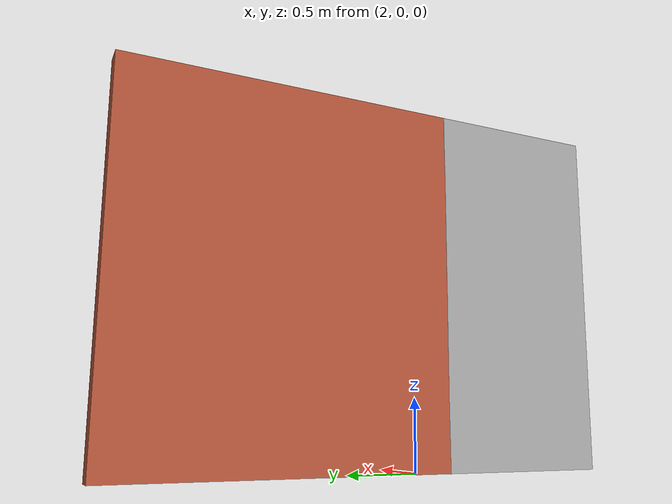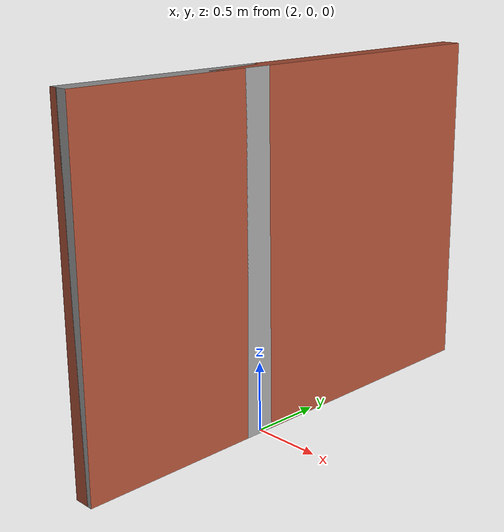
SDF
<?xml version='1.0'?>
<sdf version='1.7'>
  <model name='turtlebot3_wall'>
    <pose>1.01576 0.32413 0 0 -0 0</pose>
    <link name='Wall_4'>
      <collision name='Wall_4_Collision'>
        <geometry>
          <box>
            <size>1.5 0.15 2.5</size>
          </box>
        </geometry>
        <pose>0 0 1.25 0 -0 0</pose>
      </collision>
      <visual name='Wall_4_Visual'>
        <pose>0 0 1.25 0 -0 0</pose>
        <geometry>
          <box>
            <size>1.5 0.15 2.5</size>
          </box>
        </geometry>
        <material>
          <script>
            <uri>file://media/materials/scripts/gazebo.material</uri>
            <name>Gazebo/Grey</name>
          </script>
          <ambient>1 1 1 1</ambient>
        </material>
        <meta>
          <layer>0</layer>
        </meta>
      </visual>
      <pose>0.940761 -1 0 0 -0 -1.5708</pose>
    </link>
    <link name='Wall_6'>
      <collision name='Wall_6_Collision'>
        <geometry>
          <box>
            <size>3.5 0.15 2.5</size>
          </box>
        </geometry>
        <pose>0 0 1.25 0 -0 0</pose>
      </collision>
      <visual name='Wall_6_Visual'>
        <pose>0 0 1.25 0 -0 0</pose>
        <geometry>
          <box>
            <size>3.5 0.15 2.5</size>
          </box>
        </geometry>
        <material>
          <script>
            <uri>file://media/materials/scripts/gazebo.material</uri>
            <name>Gazebo/Bricks</name>
          </script>
          <ambient>1 1 1 1</ambient>
        </material>
        <meta>
          <layer>0</layer>
        </meta>
      </visual>
      <pose>0.940761 -0 0 0 -0 1.5708</pose>
    </link>
    <static>1</static>
  </model>
</sdf>
